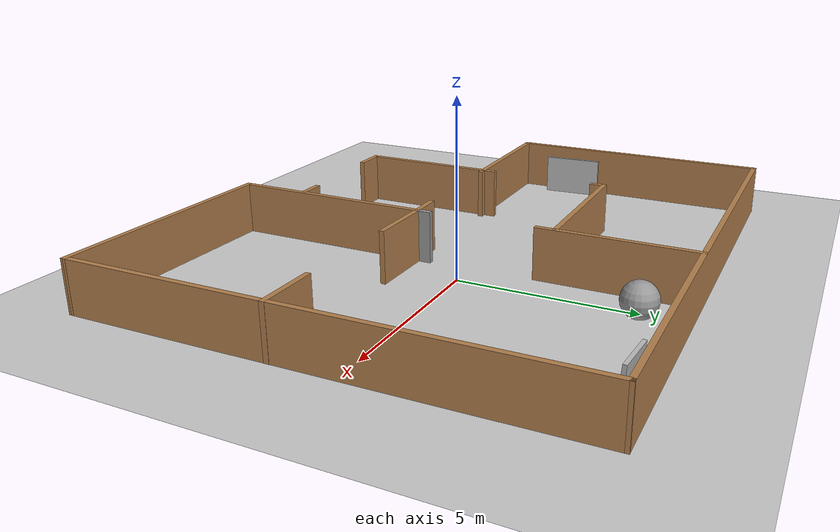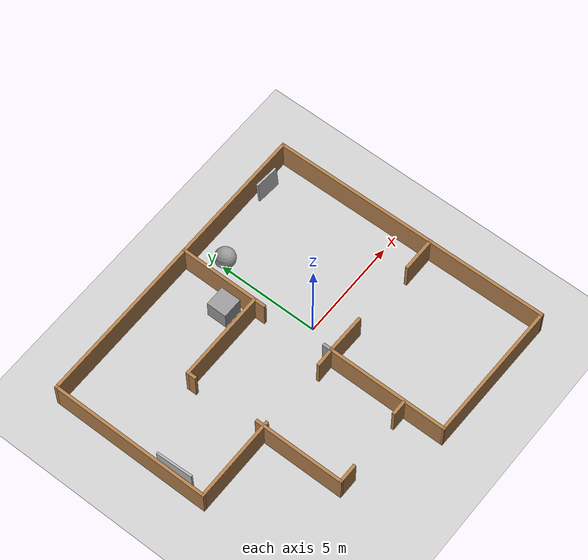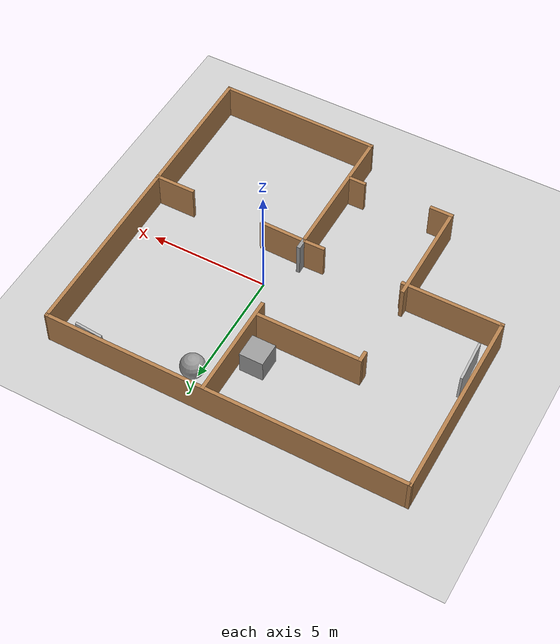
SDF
<sdf version="1.6">
 <world name="default">
  <light name="sun" type="directional">
   <pose>0 0 10 0 -0 0</pose>
   <diffuse>0.8 0.8 0.8 1</diffuse>
   <specular>0.2 0.2 0.2 1</specular>
   <attenuation>
    <range>1000</range>
    <constant>0.9</constant>
    <linear>0.01</linear>
    <quadratic>0.001</quadratic>
   </attenuation>
   <direction>-0.5 0.1 -0.9</direction>
  </light>
  <model name="ground_plane">
   <static>1</static>
   <link name="link">
    <collision name="collision">
     <geometry><plane><normal>0 0 1</normal><size>100 100</size></plane></geometry>
     <surface>
      <contact><collide_bitmask>65535</collide_bitmask></contact>
      <friction><ode><mu>100</mu><mu2>50</mu2></ode></friction>
     </surface>
    </collision>
    <visual name="visual">
     <cast_shadows>0</cast_shadows>
     <geometry><plane><normal>0 0 1</normal><size>100 100</size></plane></geometry>
     <material>
      <script><uri>file://media/materials/scripts/gazebo.material</uri><name>Gazebo/Grey</name></script>
     </material>
    </visual>
   </link>
  </model>
  <gravity>0 0 -9.8</gravity>
  <magnetic_field>6e-06 2.3e-05 -4.2e-05</magnetic_field>
  <atmosphere type="adiabatic"/>
  <physics name="default_physics" default="0" type="ode">
   <max_step_size>0.001</max_step_size>
   <real_time_factor>1</real_time_factor>
   <real_time_update_rate>1000</real_time_update_rate>
  </physics>
  <scene><ambient>0.4 0.4 0.4 1</ambient><background>0.7 0.7 0.7 1</background><shadows>1</shadows></scene>
  <audio><device>default</device></audio>
  <spherical_coordinates>
   <surface_model>EARTH_WGS84</surface_model>
   <latitude_deg>0</latitude_deg>
   <longitude_deg>0</longitude_deg>
   <elevation>0</elevation>
   <heading_deg>0</heading_deg>
  </spherical_coordinates>
  <model name="boundary">
   <pose>-1.66953 -0.682624 0 0 -0 0</pose>
   <link name="Wall_11">
    <collision name="Wall_11_Collision">
     <geometry><box><size>1.00014 0.15 1.5</size></box></geometry>
     <pose>0 0 0.75 0 -0 0</pose>
    </collision>
    <visual name="Wall_11_Visual">
     <pose>0 0 0.75 0 -0 0</pose>
     <geometry><box><size>1.00014 0.15 1.5</size></box></geometry>
     <material>
      <script><uri>file://media/materials/scripts/gazebo.material</uri><name>Gazebo/Wood</name></script>
      <ambient>1 1 1 1</ambient>
     </material>
     <meta><layer>0</layer></meta>
    </visual>
    <pose>0.382457 -0.967686 0 0 -0 -3.12277</pose>
   </link>
   <link name="Wall_13">
    <collision name="Wall_13_Collision">
     <geometry><box><size>4.5 0.15 1.5</size></box></geometry>
     <pose>0 0 0.75 0 -0 0</pose>
    </collision>
    <visual name="Wall_13_Visual">
     <pose>0 0 0.75 0 -0 0</pose>
     <geometry><box><size>4.5 0.15 1.5</size></box></geometry>
     <material>
      <script><uri>file://media/materials/scripts/gazebo.material</uri><name>Gazebo/Wood</name></script>
      <ambient>1 1 1 1</ambient>
     </material>
     <meta><layer>0</layer></meta>
    </visual>
    <pose>0.685457 4.73331 0 0 -0 -1.5708</pose>
   </link>
   <link name="Wall_17">
    <collision name="Wall_17_Collision">
     <geometry><box><size>2.00026 0.15 1.5</size></box></geometry>
     <pose>0 0 0.75 0 -0 0</pose>
    </collision>
    <visual name="Wall_17_Visual">
     <pose>0 0 0.75 0 -0 0</pose>
     <geometry><box><size>2.00026 0.15 1.5</size></box></geometry>
     <material>
      <script><uri>file://media/materials/scripts/gazebo.material</uri><name>Gazebo/Wood</name></script>
      <ambient>1 1 1 1</ambient>
     </material>
     <meta><layer>0</layer></meta>
    </visual>
    <pose>1.73246 -0.975186 0 0 -0 -0.016755</pose>
   </link>
   <link name="Wall_19">
    <collision name="Wall_19_Collision">
     <geometry><box><size>1.75 0.15 1.5</size></box></geometry>
     <pose>0 0 0.75 0 -0 0</pose>
    </collision>
    <visual name="Wall_19_Visual">
     <pose>0 0 0.75 0 -0 0</pose>
     <geometry><box><size>1.75 0.15 1.5</size></box></geometry>
     <material>
      <script><uri>file://media/materials/scripts/gazebo.material</uri><name>Gazebo/Wood</name></script>
      <ambient>1 1 1 1</ambient>
     </material>
     <meta><layer>0</layer></meta>
    </visual>
    <pose>6.75346 -1.08769 0 0 -0 0</pose>
   </link>
   <link name="Wall_28">
    <collision name="Wall_28_Collision">
     <geometry><box><size>0.5 0.15 1.5</size></box></geometry>
     <pose>0 0 0.75 0 -0 0</pose>
    </collision>
    <visual name="Wall_28_Visual">
     <pose>0 0 0.75 0 -0 0</pose>
     <geometry><box><size>0.5 0.15 1.5</size></box></geometry>
     <material>
      <script><uri>file://media/materials/scripts/gazebo.material</uri><name>Gazebo/Grey</name></script>
      <ambient>1 1 1 1</ambient>
     </material>
     <meta><layer>0</layer></meta>
    </visual>
    <pose>0.807457 -0.784686 0 0 -0 1.5708</pose>
   </link>
   <link name="Wall_3">
    <collision name="Wall_3_Collision">
     <geometry><box><size>15.2295 0.15 1.5</size></box></geometry>
     <pose>0 0 0.75 0 -0 0</pose>
    </collision>
    <visual name="Wall_3_Visual">
     <pose>0 0 0.75 0 -0 0</pose>
     <geometry><box><size>15.2295 0.15 1.5</size></box></geometry>
     <material>
      <script><uri>file://media/materials/scripts/gazebo.material</uri><name>Gazebo/Wood</name></script>
      <ambient>1 1 1 1</ambient>
     </material>
     <meta><layer>0</layer></meta>
    </visual>
    <pose>-0.071043 6.91431 0 0 -0 0</pose>
   </link>
   <link name="Wall_30">
    <collision name="Wall_30_Collision">
     <geometry><box><size>4.5 0.15 1.5</size></box></geometry>
     <pose>0 0 0.75 0 -0 0</pose>
    </collision>
    <visual name="Wall_30_Visual">
     <pose>0 0 0.75 0 -0 0</pose>
     <geometry><box><size>4.5 0.15 1.5</size></box></geometry>
     <material>
      <script><uri>file://media/materials/scripts/gazebo.material</uri><name>Gazebo/Wood</name></script>
      <ambient>1 1 1 1</ambient>
     </material>
     <meta><layer>0</layer></meta>
    </visual>
    <pose>-1.54954 3.05431 0 0 -0 3.14159</pose>
   </link>
   <link name="Wall_31">
    <collision name="Wall_31_Collision">
     <geometry><box><size>0.5 0.15 1.5</size></box></geometry>
     <pose>0 0 0.75 0 -0 0</pose>
    </collision>
    <visual name="Wall_31_Visual">
     <pose>0 0 0.75 0 -0 0</pose>
     <geometry><box><size>0.5 0.15 1.5</size></box></geometry>
     <material>
      <script><uri>file://media/materials/scripts/gazebo.material</uri><name>Gazebo/Wood</name></script>
      <ambient>1 1 1 1</ambient>
     </material>
     <meta><layer>0</layer></meta>
    </visual>
    <pose>-3.72454 2.87931 0 0 -0 -1.5708</pose>
   </link>
   <link name="Wall_33">
    <collision name="Wall_33_Collision">
     <geometry><box><size>4.5 0.15 1.5</size></box></geometry>
     <pose>0 0 0.75 0 -0 0</pose>
    </collision>
    <visual name="Wall_33_Visual">
     <pose>0 0 0.75 0 -0 0</pose>
     <geometry><box><size>4.5 0.15 1.5</size></box></geometry>
     <material>
      <script><uri>file://media/materials/scripts/gazebo.material</uri><name>Gazebo/Wood</name></script>
      <ambient>1 1 1 1</ambient>
     </material>
     <meta><layer>0</layer></meta>
    </visual>
    <pose>-3.67854 -2.77269 0 0 -0 -1.5708</pose>
   </link>
   <link name="Wall_34">
    <collision name="Wall_34_Collision">
     <geometry><box><size>1 0.15 1.5</size></box></geometry>
     <pose>0 0 0.75 0 -0 0</pose>
    </collision>
    <visual name="Wall_34_Visual">
     <pose>0 0 0.75 0 -0 0</pose>
     <geometry><box><size>1 0.15 1.5</size></box></geometry>
     <material>
      <script><uri>file://media/materials/scripts/gazebo.material</uri><name>Gazebo/Wood</name></script>
      <ambient>1 1 1 1</ambient>
     </material>
     <meta><layer>0</layer></meta>
    </visual>
    <pose>-3.25354 -4.94769 0 0 -0 0</pose>
   </link>
   <link name="Wall_36">
    <collision name="Wall_36_Collision">
     <geometry><box><size>0.75 0.15 1.5</size></box></geometry>
     <pose>0 0 0.75 0 -0 0</pose>
    </collision>
    <visual name="Wall_36_Visual">
     <pose>0 0 0.75 0 -0 0</pose>
     <geometry><box><size>0.75 0.15 1.5</size></box></geometry>
     <material>
      <script><uri>file://media/materials/scripts/gazebo.material</uri><name>Gazebo/Wood</name></script>
      <ambient>1 1 1 1</ambient>
     </material>
     <meta><layer>0</layer></meta>
    </visual>
    <pose>0.415457 -4.79869 0 0 -0 0</pose>
   </link>
   <link name="Wall_4">
    <collision name="Wall_4_Collision">
     <geometry><box><size>13.9782 0.15 1.5</size></box></geometry>
     <pose>0 0 0.75 0 -0 0</pose>
    </collision>
    <visual name="Wall_4_Visual">
     <pose>0 0 0.75 0 -0 0</pose>
     <geometry><box><size>13.9782 0.15 1.5</size></box></geometry>
     <material>
      <script><uri>file://media/materials/scripts/gazebo.material</uri><name>Gazebo/Wood</name></script>
      <ambient>1 1 1 1</ambient>
     </material>
     <meta><layer>0</layer></meta>
    </visual>
    <pose>7.53896 0.000314 0 0 -0 -1.5606</pose>
   </link>
   <link name="Wall_5">
    <collision name="Wall_5_Collision">
     <geometry><box><size>6.95318 0.15 1.5</size></box></geometry>
     <pose>0 0 0.75 0 -0 0</pose>
    </collision>
    <visual name="Wall_5_Visual">
     <pose>0 0 0.75 0 -0 0</pose>
     <geometry><box><size>6.95318 0.15 1.5</size></box></geometry>
     <material>
      <script><uri>file://media/materials/scripts/gazebo.material</uri><name>Gazebo/Wood</name></script>
      <ambient>1 1 1 1</ambient>
     </material>
     <meta><layer>0</layer></meta>
    </visual>
    <pose>4.20846 -6.86169 0 0 -0 3.1263</pose>
   </link>
   <link name="Wall_6">
    <collision name="Wall_6_Collision">
     <geometry><box><size>6 0.15 1.5</size></box></geometry>
     <pose>0 0 0.75 0 -0 0</pose>
    </collision>
    <visual name="Wall_6_Visual">
     <pose>0 0 0.75 0 -0 0</pose>
     <geometry><box><size>6 0.15 1.5</size></box></geometry>
     <material>
      <script><uri>file://media/materials/scripts/gazebo.material</uri><name>Gazebo/Wood</name></script>
      <ambient>1 1 1 1</ambient>
     </material>
     <meta><layer>0</layer></meta>
    </visual>
    <pose>0.807457 -3.88469 0 0 -0 1.5708</pose>
   </link>
   <link name="Wall_8">
    <collision name="Wall_8_Collision">
     <geometry><box><size>8 0.15 1.5</size></box></geometry>
     <pose>0 0 0.75 0 -0 0</pose>
    </collision>
    <visual name="Wall_8_Visual">
     <pose>0 0 0.75 0 -0 0</pose>
     <geometry><box><size>8 0.15 1.5</size></box></geometry>
     <material>
      <script><uri>file://media/materials/scripts/gazebo.material</uri><name>Gazebo/Wood</name></script>
      <ambient>1 1 1 1</ambient>
     </material>
     <meta><layer>0</layer></meta>
    </visual>
    <pose>-7.61054 2.98931 0 0 -0 -1.5708</pose>
   </link>
   <link name="Wall_9">
    <collision name="Wall_9_Collision">
     <geometry><box><size>4.25 0.15 1.5</size></box></geometry>
     <pose>0 0 0.75 0 -0 0</pose>
    </collision>
    <visual name="Wall_9_Visual">
     <pose>0 0 0.75 0 -0 0</pose>
     <geometry><box><size>4.25 0.15 1.5</size></box></geometry>
     <material>
      <script><uri>file://media/materials/scripts/gazebo.material</uri><name>Gazebo/Wood</name></script>
      <ambient>1 1 1 1</ambient>
     </material>
     <meta><layer>0</layer></meta>
    </visual>
    <pose>-5.56054 -0.935686 0 0 -0 0</pose>
   </link>
   <static>1</static>
  </model>
  <model name="unit_box">
   <pose>-1.7055 3.50136 0.499995 -1e-05 -0 -0</pose>
   <link name="link">
    <inertial>
     <mass>1</mass>
     <inertia>
      <ixx>0.166667</ixx>
      <ixy>0</ixy>
      <ixz>0</ixz>
      <iyy>0.166667</iyy>
      <iyz>0</iyz>
      <izz>0.166667</izz>
     </inertia>
    </inertial>
    <collision name="collision"><geometry><box><size>1 1 1</size></box></geometry></collision>
    <visual name="visual">
     <geometry><box><size>1 1 1</size></box></geometry>
     <material>
      <script><name>Gazebo/Grey</name><uri>file://media/materials/scripts/gazebo.material</uri></script>
     </material>
    </visual>
   </link>
  </model>
  <model name="unit_sphere">
   <pose>0.222887 5.00318 0.5 0 -0 0</pose>
   <link name="link">
    <inertial>
     <mass>1</mass>
     <inertia><ixx>0.1</ixx><ixy>0</ixy><ixz>0</ixz><iyy>0.1</iyy><iyz>0</iyz><izz>0.1</izz></inertia>
    </inertial>
    <collision name="collision"><geometry><sphere><radius>0.5</radius></sphere></geometry></collision>
    <visual name="visual">
     <geometry><sphere><radius>0.5</radius></sphere></geometry>
     <material>
      <script><name>Gazebo/Grey</name><uri>file://media/materials/scripts/gazebo.material</uri></script>
     </material>
    </visual>
   </link>
  </model>
  <model name="bill_gates">
   <link name="link">
    <inertial>
     <pose>0 -0.1 0.95 0 -0 0</pose>
     <mass>0.0001</mass>
     <inertia><ixx>0.01</ixx><ixy>0</ixy><ixz>0</ixz><iyy>0.01</iyy><iyz>0</iyz><izz>0.01</izz></inertia>
    </inertial>
    <collision name="person">
     <pose>0 0 0.5 0 -0 1.57</pose>
     <geometry><mesh><uri>model://bill_gates/meshes/gates.dae</uri></mesh></geometry>
    </collision>
    <visual name="visual">
     <pose>0 0 0.5 0 -0 1.57</pose>
     <geometry><mesh><uri>model://bill_gates/meshes/gates.dae</uri></mesh></geometry>
    </visual>
   </link>
   <pose>4.18809 5.79393 0.103959 0.086884 -6.9e-05 3.07076</pose>
  </model>
  <model name="morgan_freeman">
   <link name="link">
    <inertial>
     <pose>0 -0.1 0.95 0 -0 0</pose>
     <mass>0.0001</mass>
     <inertia><ixx>0.01</ixx><ixy>0</ixy><ixz>0</ixz><iyy>0.01</iyy><iyz>0</iyz><izz>0.01</izz></inertia>
    </inertial>
    <collision name="person">
     <pose>0 0 0.5 0 -0 1.57</pose>
     <geometry><mesh><uri>model://morgan_freeman/meshes/morgan.dae</uri></mesh></geometry>
    </collision>
    <visual name="visual">
     <pose>0 0 0.5 0 -0 1.57</pose>
     <geometry><mesh><uri>model://morgan_freeman/meshes/morgan.dae</uri></mesh></geometry>
    </visual>
   </link>
   <pose>-8.84362 0.254868 0.106953 0.021903 0.006531 -1.53053</pose>
  </model>
  <light name="user_point_light_0" type="point">
   <pose>-8.21903 0.199798 1 0 -0 0</pose>
   <diffuse>0.5 0.5 0.5 1</diffuse>
   <specular>0.1 0.1 0.1 1</specular>
   <attenuation>
    <range>20</range>
    <constant>0.5</constant>
    <linear>0.01</linear>
    <quadratic>0.001</quadratic>
   </attenuation>
   <cast_shadows>0</cast_shadows>
   <direction>0 0 -1</direction>
  </light>
  <light name="user_point_light_1" type="point">
   <pose>3.99476 4.98517 1 0 -0 0</pose>
   <diffuse>0.5 0.5 0.5 1</diffuse>
   <specular>0.1 0.1 0.1 1</specular>
   <attenuation>
    <range>20</range>
    <constant>0.5</constant>
    <linear>0.01</linear>
    <quadratic>0.001</quadratic>
   </attenuation>
   <cast_shadows>0</cast_shadows>
   <direction>0 0 -1</direction>
  </light>
 </world>
</sdf>
